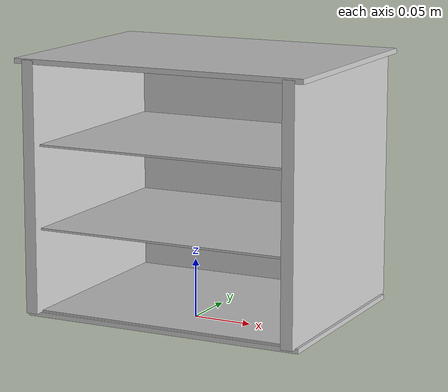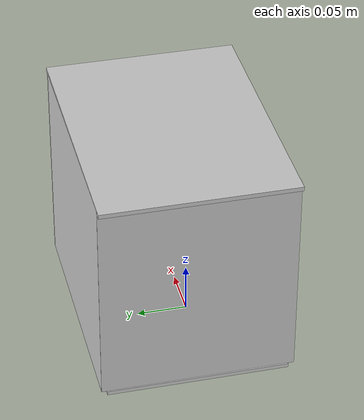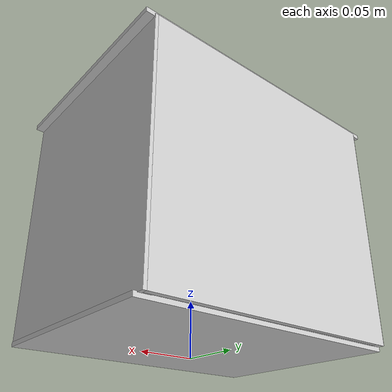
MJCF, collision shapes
<mujoco model="wooden_shelf">
  <asset>
  <texture file="dark_fine_wood.png" name="tex-wooden_shelf" type="2d" />
  <material name="wooden_shelf" reflectance="0.5" texrepeat="1 1" texture="tex-wooden_shelf" texuniform="false" />
  <mesh file="visual/wooden_shelf_vis.msh" name="wooden_shelf_vis" scale="0.05 0.05 0.05" /></asset>
  <worldbody>
    <body>
      <body name="object">
     <site type="box" pos="0.00354 0.01567 0.22152" quat="1 0 0 0" size="0.12534 0.09438 0.00147" group="0" rgba="0.8 0.8 0 0" name="top_side"/>
      <site type="box" pos="0.00393 -0.00000 0.18257" quat="0.70711 0.00000 0.70711 0.00000" size="0.03272 0.05000 0.11027" group="0" rgba="0.8 0.8 0.8 0" name="top_region"/>
      <site type="box" pos="0.00393 -0.00000 0.11444" quat="0.70711 0.00000 0.70711 0.00000" size="0.03272 0.05000 0.11027" group="0" rgba="0.8 0.8 0.8 0" name="middle_region"/>
      <site type="box" pos="0.00393 -0.00000 0.04674" quat="0.70711 0.00000 0.70711 0.00000" size="0.03272 0.05000 0.11027" group="0" rgba="0.8 0.8 0.8 0" name="bottom_region"/>
      <geom solimp="0.998 0.998 0.001" solref="0.001 1" density="100" friction="0.95 0.3 0.1" type="mesh" mesh="wooden_shelf_vis" conaffinity="0" contype="0" group="1" material="wooden_shelf" /><geom solimp="0.998 0.998 0.001" solref="0.001 1" density="100" friction="0.95 0.3 0.1" type="box" pos="0.00397 0.10954 0.11350" quat="0.49988 -0.50104 -0.50012 0.49896" size="0.00193 0.10453 0.11106" group="0" rgba="0.8 0.8 0.8 0.3" /><geom solimp="0.998 0.998 0.001" solref="0.001 1" density="100" friction="0.95 0.3 0.1" type="box" pos="0.00376 0.01868 0.14935" quat="0.70792 0.00065 0.70629 -0.00065" size="0.00085 0.08935 0.11168" group="0" rgba="0.8 0.8 0.8 0.3" /><geom solimp="0.998 0.998 0.001" solref="0.001 1" density="100" friction="0.95 0.3 0.1" type="box" pos="0.00408 0.01868 0.00933" quat="0.00065 -0.70792 0.00065 0.70629" size="0.00085 0.08935 0.11168" group="0" rgba="0.8 0.8 0.8 0.3" /><geom solimp="0.998 0.998 0.001" solref="0.001 1" density="100" friction="0.95 0.3 0.1" type="box" pos="0.00392 0.01868 0.07928" quat="0.70792 0.00065 0.70629 -0.00065" size="0.00085 0.08935 0.11168" group="0" rgba="0.8 0.8 0.8 0.3" /><geom solimp="0.998 0.998 0.001" solref="0.001 1" density="100" friction="0.95 0.3 0.1" type="box" pos="0.00356 0.01635 0.21918" quat="0.00065 -0.70792 0.00065 0.70629" size="0.00215 0.09508 0.12803" group="0" rgba="0.8 0.8 0.8 0.3" /><geom solimp="0.998 0.998 0.001" solref="0.001 1" density="100" friction="0.95 0.3 0.1" type="box" pos="0.00405 0.01635 0.00686" quat="0.70792 0.00065 0.70629 -0.00065" size="0.00199 0.08960 0.12277" group="0" rgba="0.8 0.8 0.8 0.3" /><geom solimp="0.998 0.998 0.001" solref="0.001 1" density="100" friction="0.95 0.3 0.1" type="box" pos="-0.11216 0.01625 0.11426" quat="0.00000 0.00000 1.00000 0.00000" size="0.00517 0.09542 0.10584" group="0" rgba="0.8 0.8 0.8 0.3" /><geom solimp="0.998 0.998 0.001" solref="0.001 1" density="100" friction="0.95 0.3 0.1" type="box" pos="0.11898 0.01625 0.11426" quat="0.00000 1.00000 0.00000 0.00000" size="0.00517 0.09542 0.10584" group="0" rgba="0.8 0.8 0.8 0.3" /><geom solimp="0.998 0.998 0.001" solref="0.001 1" density="100" friction="0.95 0.3 0.1" type="box" pos="0.00211 0.10938 0.11426" quat="0.49997 0.49997 -0.50003 -0.50003" size="0.00231 0.10584 0.11912" group="0" rgba="0.8 0.8 0.8 0.3" /></body>
      <site rgba="0 0 0 0" size="0.005" pos="0 0 -0.06" name="bottom_site" />
      <site rgba="0 0 0 0" size="0.005" pos="0 0 0.04" name="top_site" />
      <site rgba="0 0 0 0" size="0.005" pos="0.025 0.025 0" name="horizontal_radius_site" />
    </body>
  </worldbody>
</mujoco>
